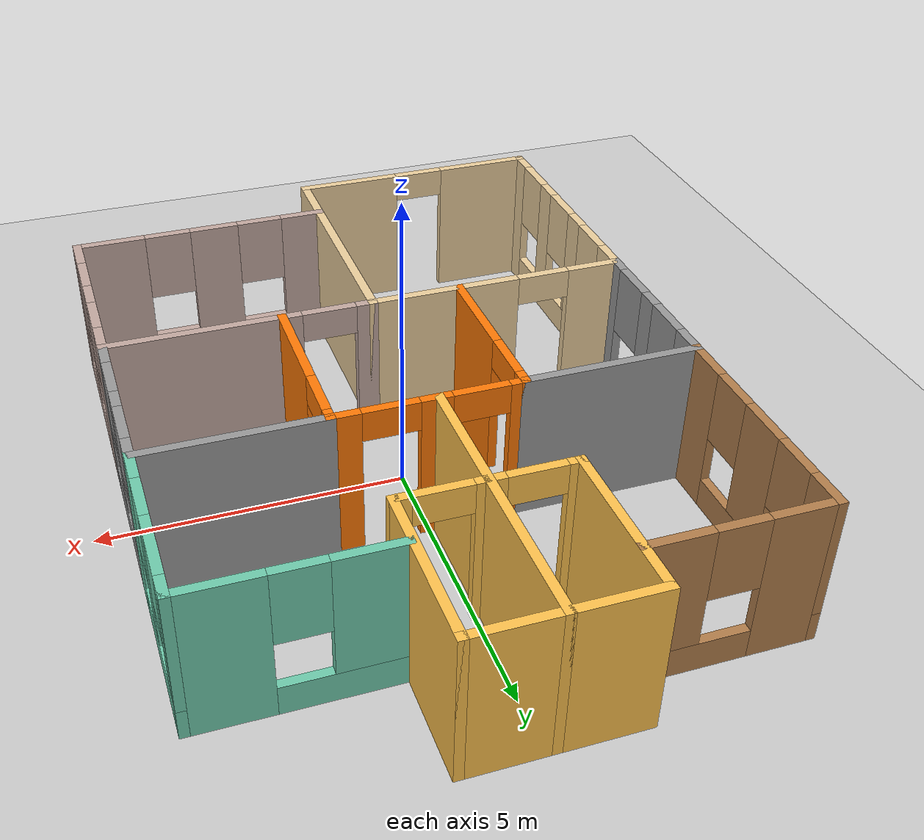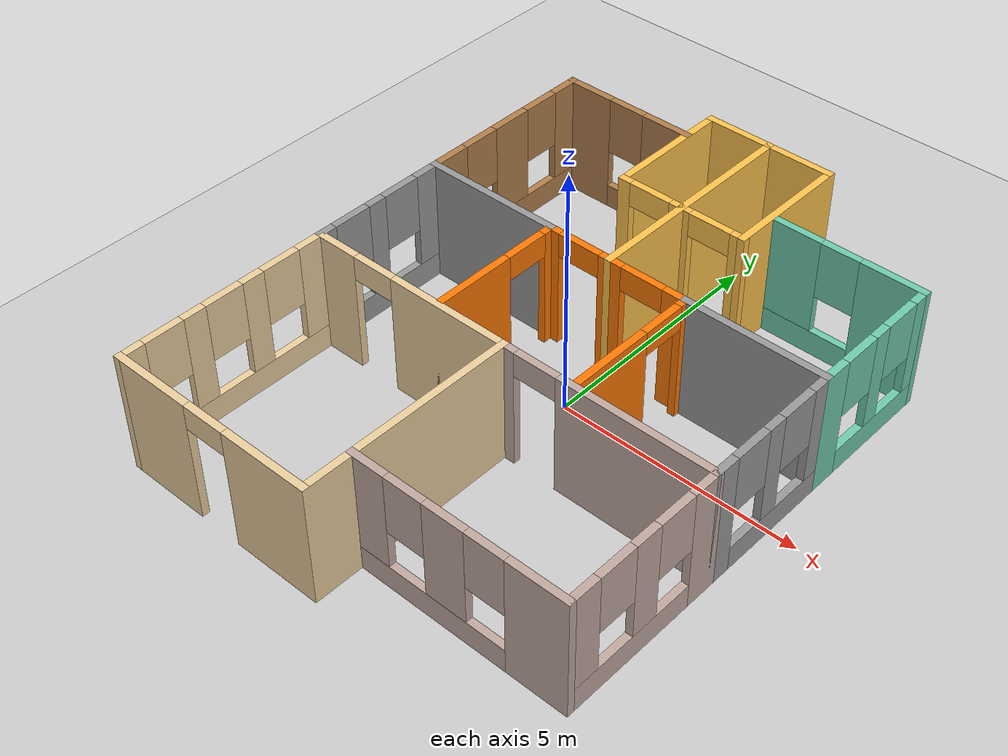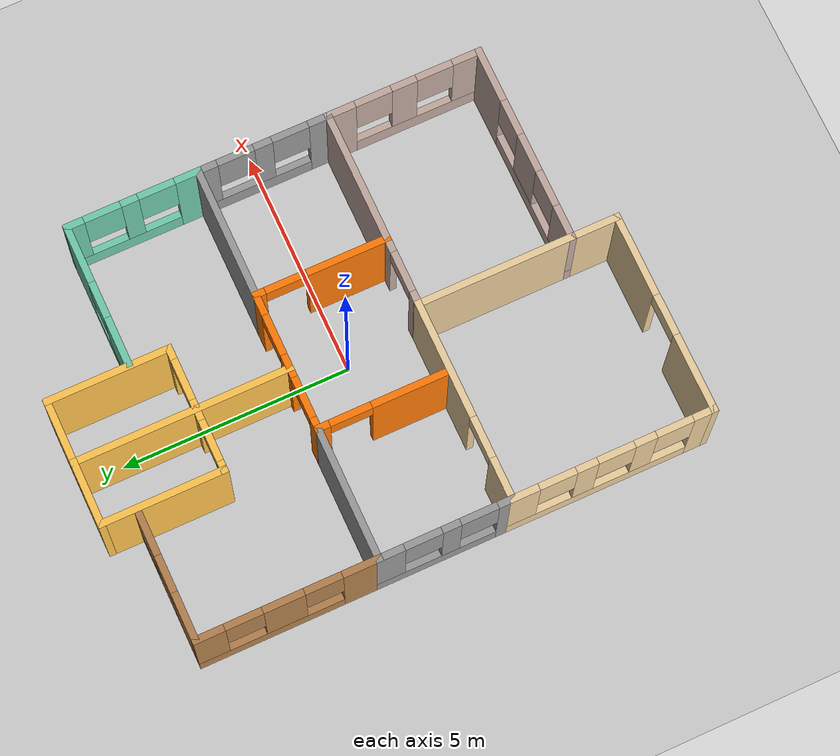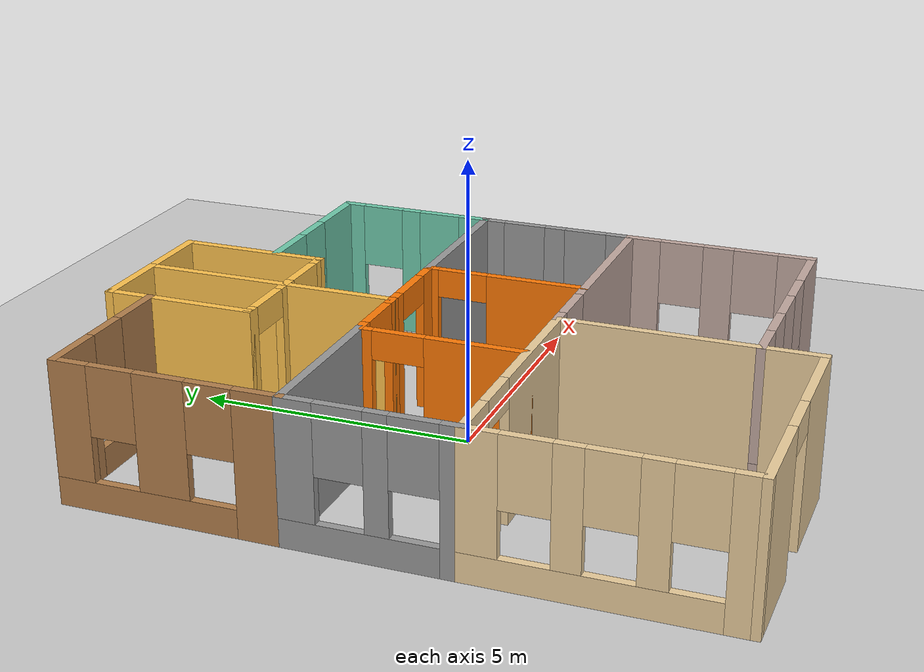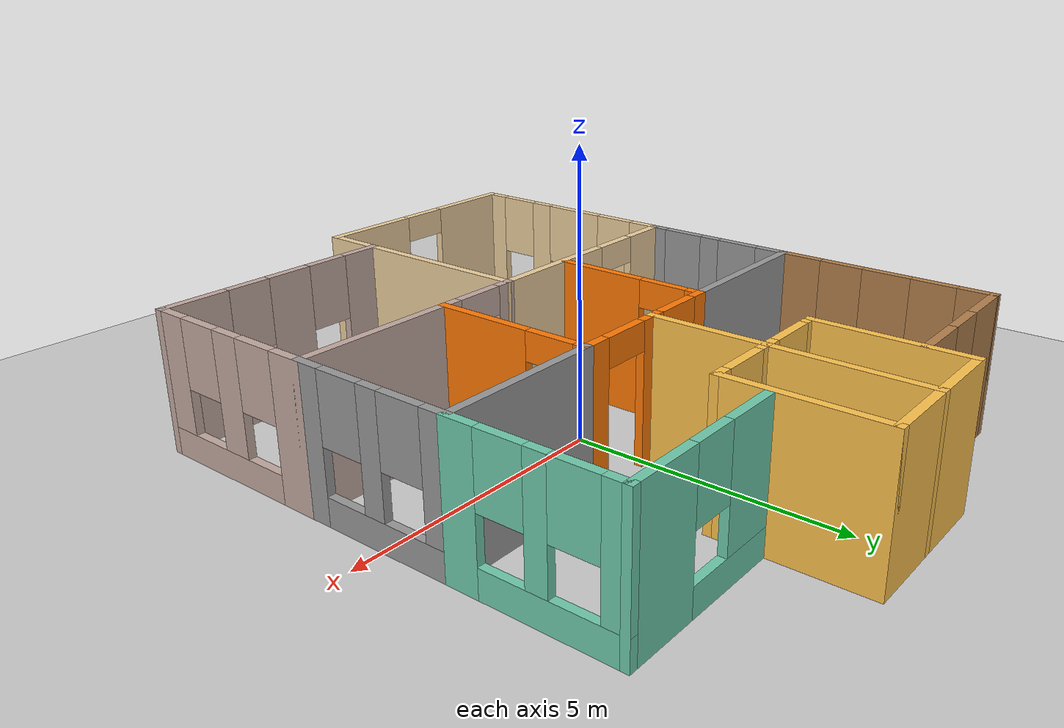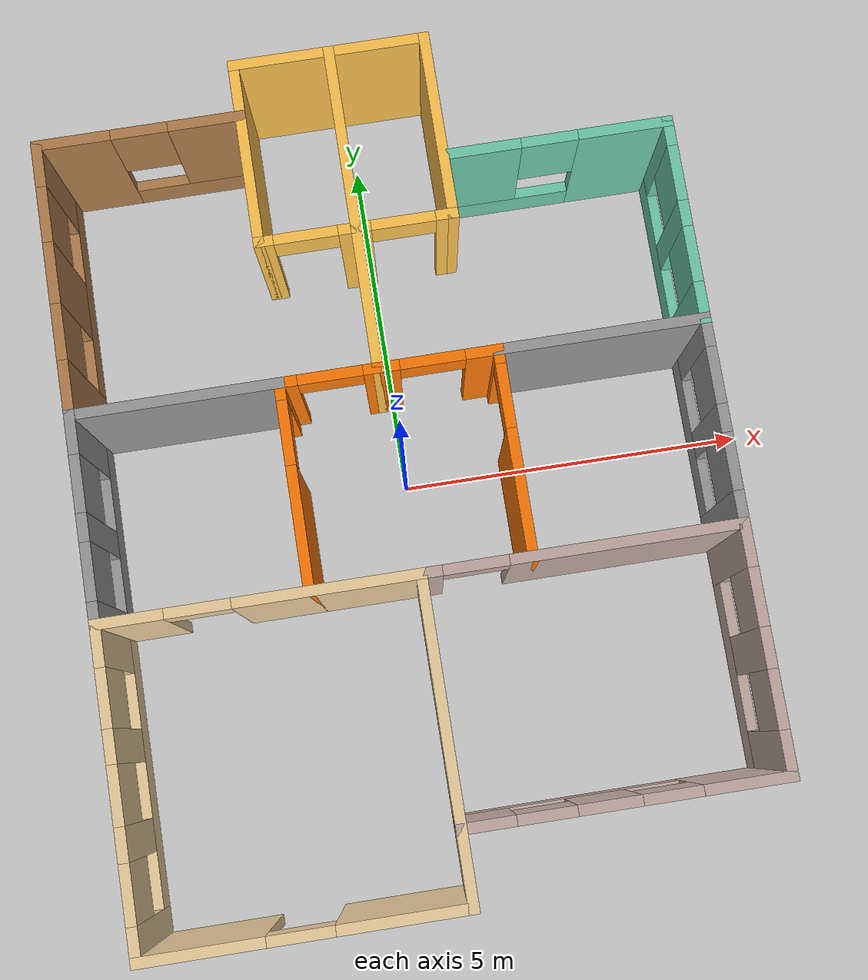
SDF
<sdf version="1.6">
 <world name="default">
  <light name="sun" type="directional">
   <pose>0 0 10 0 -0 0</pose>
   <diffuse>0.8 0.8 0.8 1</diffuse>
   <specular>0.2 0.2 0.2 1</specular>
   <attenuation>
    <range>1000</range>
    <constant>0.9</constant>
    <linear>0.01</linear>
    <quadratic>0.001</quadratic>
   </attenuation>
   <direction>-0.5 0.1 -0.9</direction>
  </light>
  <model name="ground_plane">
   <static>1</static>
   <link name="link">
    <collision name="collision">
     <geometry><plane><normal>0 0 1</normal><size>100 100</size></plane></geometry>
     <surface>
      <contact><collide_bitmask>65535</collide_bitmask></contact>
      <friction><ode><mu>100</mu><mu2>50</mu2></ode></friction>
     </surface>
    </collision>
    <visual name="visual">
     <cast_shadows>0</cast_shadows>
     <geometry><plane><normal>0 0 1</normal><size>100 100</size></plane></geometry>
     <material>
      <script><uri>file://media/materials/scripts/gazebo.material</uri><name>Gazebo/Grey</name></script>
     </material>
    </visual>
   </link>
  </model>
  <gravity>0 0 -9.8</gravity>
  <magnetic_field>6e-06 2.3e-05 -4.2e-05</magnetic_field>
  <atmosphere type="adiabatic"/>
  <physics name="default_physics" default="0" type="ode">
   <max_step_size>0.001</max_step_size>
   <real_time_factor>1</real_time_factor>
   <real_time_update_rate>1000</real_time_update_rate>
  </physics>
  <scene><ambient>0.4 0.4 0.4 1</ambient><background>0.7 0.7 0.7 1</background><shadows>1</shadows></scene>
  <audio><device>default</device></audio>
  <spherical_coordinates>
   <surface_model>EARTH_WGS84</surface_model>
   <latitude_deg>0</latitude_deg>
   <longitude_deg>0</longitude_deg>
   <elevation>0</elevation>
   <heading_deg>0</heading_deg>
  </spherical_coordinates>
  <model name="dd_home">
   <link name="Wall_0">
    <pose>-2.175 -5.9 0 0 -0 3.14159</pose>
    <visual name="Wall_0_Visual_0">
     <pose>-1.322 0 1.25 0 -0 0</pose>
     <geometry><box><size>1.856 0.15 2.5</size></box></geometry>
     <material>
      <script><uri>file://media/materials/scripts/gazebo.material</uri><name>Gazebo/Grey</name></script>
      <ambient>0.921569 0.807843 0.615686 1</ambient>
     </material>
     <meta><layer>0</layer></meta>
    </visual>
    <collision name="Wall_0_Collision_0">
     <geometry><box><size>1.856 0.15 2.5</size></box></geometry>
     <pose>-1.322 0 1.25 0 -0 0</pose>
    </collision>
    <visual name="Wall_0_Visual_1">
     <pose>1.378 0 1.25 0 -0 0</pose>
     <geometry><box><size>1.744 0.15 2.5</size></box></geometry>
     <material>
      <script><uri>file://media/materials/scripts/gazebo.material</uri><name>Gazebo/Grey</name></script>
      <ambient>0.921569 0.807843 0.615686 1</ambient>
     </material>
     <meta><layer>0</layer></meta>
    </visual>
    <collision name="Wall_0_Collision_1">
     <geometry><box><size>1.744 0.15 2.5</size></box></geometry>
     <pose>1.378 0 1.25 0 -0 0</pose>
    </collision>
    <visual name="Wall_0_Visual_2">
     <pose>0.056 0 2.25 0 -0 0</pose>
     <geometry><box><size>0.9 0.15 0.5</size></box></geometry>
     <material>
      <script><uri>file://media/materials/scripts/gazebo.material</uri><name>Gazebo/Grey</name></script>
      <ambient>0.921569 0.807843 0.615686 1</ambient>
     </material>
     <meta><layer>0</layer></meta>
    </visual>
    <collision name="Wall_0_Collision_2">
     <geometry><box><size>0.9 0.15 0.5</size></box></geometry>
     <pose>0.056 0 2.25 0 -0 0</pose>
    </collision>
   </link>
   <link name="Wall_1">
    <pose>-4.35 -3.725 0 0 -0 1.5708</pose>
    <visual name="Wall_1_Visual_0">
     <pose>-1.987 0 1.25 0 -0 0</pose>
     <geometry><box><size>0.526 0.15 2.5</size></box></geometry>
     <material>
      <script><uri>file://media/materials/scripts/gazebo.material</uri><name>Gazebo/Grey</name></script>
      <ambient>0.921569 0.807843 0.615686 1</ambient>
     </material>
     <meta><layer>0</layer></meta>
    </visual>
    <collision name="Wall_1_Collision_0">
     <geometry><box><size>0.526 0.15 2.5</size></box></geometry>
     <pose>-1.987 0 1.25 0 -0 0</pose>
    </collision>
    <visual name="Wall_1_Visual_1">
     <pose>0.263 0 0.25 0 -0 0</pose>
     <geometry><box><size>3.974 0.15 0.5</size></box></geometry>
     <material>
      <script><uri>file://media/materials/scripts/gazebo.material</uri><name>Gazebo/Grey</name></script>
      <ambient>0.921569 0.807843 0.615686 1</ambient>
     </material>
     <meta><layer>0</layer></meta>
    </visual>
    <collision name="Wall_1_Collision_1">
     <geometry><box><size>3.974 0.15 0.5</size></box></geometry>
     <pose>0.263 0 0.25 0 -0 0</pose>
    </collision>
    <visual name="Wall_1_Visual_2">
     <pose>-0.6915 0 1.5 0 -0 0</pose>
     <geometry><box><size>0.465 0.15 2</size></box></geometry>
     <material>
      <script><uri>file://media/materials/scripts/gazebo.material</uri><name>Gazebo/Grey</name></script>
      <ambient>0.921569 0.807843 0.615686 1</ambient>
     </material>
     <meta><layer>0</layer></meta>
    </visual>
    <collision name="Wall_1_Collision_2">
     <geometry><box><size>0.465 0.15 2</size></box></geometry>
     <pose>-0.6915 0 1.5 0 -0 0</pose>
    </collision>
    <visual name="Wall_1_Visual_3">
     <pose>0.5735 0 1.5 0 -0 0</pose>
     <geometry><box><size>0.465 0.15 2</size></box></geometry>
     <material>
      <script><uri>file://media/materials/scripts/gazebo.material</uri><name>Gazebo/Grey</name></script>
      <ambient>0.921569 0.807843 0.615686 1</ambient>
     </material>
     <meta><layer>0</layer></meta>
    </visual>
    <collision name="Wall_1_Collision_3">
     <geometry><box><size>0.465 0.15 2</size></box></geometry>
     <pose>0.5735 0 1.5 0 -0 0</pose>
    </collision>
    <visual name="Wall_1_Visual_4">
     <pose>1.928 0 1.5 0 -0 0</pose>
     <geometry><box><size>0.644 0.15 2</size></box></geometry>
     <material>
      <script><uri>file://media/materials/scripts/gazebo.material</uri><name>Gazebo/Grey</name></script>
      <ambient>0.921569 0.807843 0.615686 1</ambient>
     </material>
     <meta><layer>0</layer></meta>
    </visual>
    <collision name="Wall_1_Collision_4">
     <geometry><box><size>0.644 0.15 2</size></box></geometry>
     <pose>1.928 0 1.5 0 -0 0</pose>
    </collision>
    <visual name="Wall_1_Visual_5">
     <pose>-1.324 0 1.9 0 -0 0</pose>
     <geometry><box><size>0.8 0.15 1.2</size></box></geometry>
     <material>
      <script><uri>file://media/materials/scripts/gazebo.material</uri><name>Gazebo/Grey</name></script>
      <ambient>0.921569 0.807843 0.615686 1</ambient>
     </material>
     <meta><layer>0</layer></meta>
    </visual>
    <collision name="Wall_1_Collision_5">
     <geometry><box><size>0.8 0.15 1.2</size></box></geometry>
     <pose>-1.324 0 1.9 0 -0 0</pose>
    </collision>
    <visual name="Wall_1_Visual_6">
     <pose>-0.059 0 1.9 0 -0 0</pose>
     <geometry><box><size>0.8 0.15 1.2</size></box></geometry>
     <material>
      <script><uri>file://media/materials/scripts/gazebo.material</uri><name>Gazebo/Grey</name></script>
      <ambient>0.921569 0.807843 0.615686 1</ambient>
     </material>
     <meta><layer>0</layer></meta>
    </visual>
    <collision name="Wall_1_Collision_6">
     <geometry><box><size>0.8 0.15 1.2</size></box></geometry>
     <pose>-0.059 0 1.9 0 -0 0</pose>
    </collision>
    <visual name="Wall_1_Visual_7">
     <pose>1.206 0 1.9 0 -0 0</pose>
     <geometry><box><size>0.8 0.15 1.2</size></box></geometry>
     <material>
      <script><uri>file://media/materials/scripts/gazebo.material</uri><name>Gazebo/Grey</name></script>
      <ambient>0.921569 0.807843 0.615686 1</ambient>
     </material>
     <meta><layer>0</layer></meta>
    </visual>
    <collision name="Wall_1_Collision_7">
     <geometry><box><size>0.8 0.15 1.2</size></box></geometry>
     <pose>1.206 0 1.9 0 -0 0</pose>
    </collision>
   </link>
   <link name="Wall_10">
    <collision name="Wall_10_Collision">
     <geometry><box><size>3 0.15 2.5</size></box></geometry>
     <pose>0 0 1.25 0 -0 0</pose>
    </collision>
    <visual name="Wall_10_Visual">
     <pose>0 0 1.25 0 -0 0</pose>
     <geometry><box><size>3 0.15 2.5</size></box></geometry>
     <material>
      <script><uri>file://media/materials/scripts/gazebo.material</uri><name>Gazebo/Grey</name></script>
      <ambient>1 1 1 1</ambient>
     </material>
     <meta><layer>0</layer></meta>
    </visual>
    <pose>2.925 1.3 0 0 -0 3.14159</pose>
   </link>
   <link name="Wall_11">
    <pose>1.5 -0.125 0 0 -0 -1.5708</pose>
    <visual name="Wall_11_Visual_0">
     <pose>-1.365 0 1.25 0 -0 0</pose>
     <geometry><box><size>0.27 0.15 2.5</size></box></geometry>
     <material>
      <script><uri>file://media/materials/scripts/gazebo.material</uri><name>Gazebo/Grey</name></script>
      <ambient>0.996078 0.47451 0.0196078 1</ambient>
     </material>
     <meta><layer>0</layer></meta>
    </visual>
    <collision name="Wall_11_Collision_0">
     <geometry><box><size>0.27 0.15 2.5</size></box></geometry>
     <pose>-1.365 0 1.25 0 -0 0</pose>
    </collision>
    <visual name="Wall_11_Visual_1">
     <pose>0.585 0 1.25 0 -0 0</pose>
     <geometry><box><size>1.83 0.15 2.5</size></box></geometry>
     <material>
      <script><uri>file://media/materials/scripts/gazebo.material</uri><name>Gazebo/Grey</name></script>
      <ambient>0.996078 0.47451 0.0196078 1</ambient>
     </material>
     <meta><layer>0</layer></meta>
    </visual>
    <collision name="Wall_11_Collision_1">
     <geometry><box><size>1.83 0.15 2.5</size></box></geometry>
     <pose>0.585 0 1.25 0 -0 0</pose>
    </collision>
    <visual name="Wall_11_Visual_2">
     <pose>-0.78 0 2.25 0 -0 0</pose>
     <geometry><box><size>0.9 0.15 0.5</size></box></geometry>
     <material>
      <script><uri>file://media/materials/scripts/gazebo.material</uri><name>Gazebo/Grey</name></script>
      <ambient>0.996078 0.47451 0.0196078 1</ambient>
     </material>
     <meta><layer>0</layer></meta>
    </visual>
    <collision name="Wall_11_Collision_2">
     <geometry><box><size>0.9 0.15 0.5</size></box></geometry>
     <pose>-0.78 0 2.25 0 -0 0</pose>
    </collision>
   </link>
   <link name="Wall_13">
    <pose>-4.35 -0.125 0 0 -0 1.5708</pose>
    <visual name="Wall_13_Visual_0">
     <pose>-1.3075 0 1.25 0 -0 0</pose>
     <geometry><box><size>0.385 0.15 2.5</size></box></geometry>
     <material>
      <script><uri>file://media/materials/scripts/gazebo.material</uri><name>Gazebo/Grey</name></script>
      <ambient>1 1 1 1</ambient>
     </material>
     <meta><layer>0</layer></meta>
    </visual>
    <collision name="Wall_13_Collision_0">
     <geometry><box><size>0.385 0.15 2.5</size></box></geometry>
     <pose>-1.3075 0 1.25 0 -0 0</pose>
    </collision>
    <visual name="Wall_13_Visual_1">
     <pose>0.1925 0 0.25 0 -0 0</pose>
     <geometry><box><size>2.615 0.15 0.5</size></box></geometry>
     <material>
      <script><uri>file://media/materials/scripts/gazebo.material</uri><name>Gazebo/Grey</name></script>
      <ambient>1 1 1 1</ambient>
     </material>
     <meta><layer>0</layer></meta>
    </visual>
    <collision name="Wall_13_Collision_1">
     <geometry><box><size>2.615 0.15 0.5</size></box></geometry>
     <pose>0.1925 0 0.25 0 -0 0</pose>
    </collision>
    <visual name="Wall_13_Visual_2">
     <pose>-0.117 0 1.5 0 -0 0</pose>
     <geometry><box><size>0.396 0.15 2</size></box></geometry>
     <material>
      <script><uri>file://media/materials/scripts/gazebo.material</uri><name>Gazebo/Grey</name></script>
      <ambient>1 1 1 1</ambient>
     </material>
     <meta><layer>0</layer></meta>
    </visual>
    <collision name="Wall_13_Collision_2">
     <geometry><box><size>0.396 0.15 2</size></box></geometry>
     <pose>-0.117 0 1.5 0 -0 0</pose>
    </collision>
    <visual name="Wall_13_Visual_3">
     <pose>1.1905 0 1.5 0 -0 0</pose>
     <geometry><box><size>0.619 0.15 2</size></box></geometry>
     <material>
      <script><uri>file://media/materials/scripts/gazebo.material</uri><name>Gazebo/Grey</name></script>
      <ambient>1 1 1 1</ambient>
     </material>
     <meta><layer>0</layer></meta>
    </visual>
    <collision name="Wall_13_Collision_3">
     <geometry><box><size>0.619 0.15 2</size></box></geometry>
     <pose>1.1905 0 1.5 0 -0 0</pose>
    </collision>
    <visual name="Wall_13_Visual_4">
     <pose>-0.715 0 1.9 0 -0 0</pose>
     <geometry><box><size>0.8 0.15 1.2</size></box></geometry>
     <material>
      <script><uri>file://media/materials/scripts/gazebo.material</uri><name>Gazebo/Grey</name></script>
      <ambient>1 1 1 1</ambient>
     </material>
     <meta><layer>0</layer></meta>
    </visual>
    <collision name="Wall_13_Collision_4">
     <geometry><box><size>0.8 0.15 1.2</size></box></geometry>
     <pose>-0.715 0 1.9 0 -0 0</pose>
    </collision>
    <visual name="Wall_13_Visual_5">
     <pose>0.481 0 1.9 0 -0 0</pose>
     <geometry><box><size>0.8 0.15 1.2</size></box></geometry>
     <material>
      <script><uri>file://media/materials/scripts/gazebo.material</uri><name>Gazebo/Grey</name></script>
      <ambient>1 1 1 1</ambient>
     </material>
     <meta><layer>0</layer></meta>
    </visual>
    <collision name="Wall_13_Collision_5">
     <geometry><box><size>0.8 0.15 1.2</size></box></geometry>
     <pose>0.481 0 1.9 0 -0 0</pose>
    </collision>
   </link>
   <link name="Wall_14">
    <collision name="Wall_14_Collision">
     <geometry><box><size>3 0.15 2.5</size></box></geometry>
     <pose>0 0 1.25 0 -0 0</pose>
    </collision>
    <visual name="Wall_14_Visual">
     <pose>0 0 1.25 0 -0 0</pose>
     <geometry><box><size>3 0.15 2.5</size></box></geometry>
     <material>
      <script><uri>file://media/materials/scripts/gazebo.material</uri><name>Gazebo/Grey</name></script>
      <ambient>1 1 1 1</ambient>
     </material>
     <meta><layer>0</layer></meta>
    </visual>
    <pose>-2.925 1.3 0 0 -0 0</pose>
   </link>
   <link name="Wall_15">
    <pose>-1.5 -0.125 0 0 -0 -1.5708</pose>
    <visual name="Wall_15_Visual_0">
     <pose>-1.342 0 1.25 0 -0 0</pose>
     <geometry><box><size>0.316 0.15 2.5</size></box></geometry>
     <material>
      <script><uri>file://media/materials/scripts/gazebo.material</uri><name>Gazebo/Grey</name></script>
      <ambient>0.996078 0.47451 0.0196078 1</ambient>
     </material>
     <meta><layer>0</layer></meta>
    </visual>
    <collision name="Wall_15_Collision_0">
     <geometry><box><size>0.316 0.15 2.5</size></box></geometry>
     <pose>-1.342 0 1.25 0 -0 0</pose>
    </collision>
    <visual name="Wall_15_Visual_1">
     <pose>0.608 0 1.25 0 -0 0</pose>
     <geometry><box><size>1.784 0.15 2.5</size></box></geometry>
     <material>
      <script><uri>file://media/materials/scripts/gazebo.material</uri><name>Gazebo/Grey</name></script>
      <ambient>0.996078 0.47451 0.0196078 1</ambient>
     </material>
     <meta><layer>0</layer></meta>
    </visual>
    <collision name="Wall_15_Collision_1">
     <geometry><box><size>1.784 0.15 2.5</size></box></geometry>
     <pose>0.608 0 1.25 0 -0 0</pose>
    </collision>
    <visual name="Wall_15_Visual_2">
     <pose>-0.734 0 2.25 0 -0 0</pose>
     <geometry><box><size>0.9 0.15 0.5</size></box></geometry>
     <material>
      <script><uri>file://media/materials/scripts/gazebo.material</uri><name>Gazebo/Grey</name></script>
      <ambient>0.996078 0.47451 0.0196078 1</ambient>
     </material>
     <meta><layer>0</layer></meta>
    </visual>
    <collision name="Wall_15_Collision_2">
     <geometry><box><size>0.9 0.15 0.5</size></box></geometry>
     <pose>-0.734 0 2.25 0 -0 0</pose>
    </collision>
   </link>
   <link name="Wall_17">
    <pose>-0.825 1.3 0 0 -0 0</pose>
    <visual name="Wall_17_Visual_0">
     <pose>-0.59 0 1.25 0 -0 0</pose>
     <geometry><box><size>0.32 0.15 2.5</size></box></geometry>
     <material>
      <script><uri>file://media/materials/scripts/gazebo.material</uri><name>Gazebo/Grey</name></script>
      <ambient>0.996078 0.47451 0.0196078 1</ambient>
     </material>
     <meta><layer>0</layer></meta>
    </visual>
    <collision name="Wall_17_Collision_0">
     <geometry><box><size>0.32 0.15 2.5</size></box></geometry>
     <pose>-0.59 0 1.25 0 -0 0</pose>
    </collision>
    <visual name="Wall_17_Visual_1">
     <pose>0.61 0 1.25 0 -0 0</pose>
     <geometry><box><size>0.28 0.15 2.5</size></box></geometry>
     <material>
      <script><uri>file://media/materials/scripts/gazebo.material</uri><name>Gazebo/Grey</name></script>
      <ambient>0.996078 0.47451 0.0196078 1</ambient>
     </material>
     <meta><layer>0</layer></meta>
    </visual>
    <collision name="Wall_17_Collision_1">
     <geometry><box><size>0.28 0.15 2.5</size></box></geometry>
     <pose>0.61 0 1.25 0 -0 0</pose>
    </collision>
    <visual name="Wall_17_Visual_2">
     <pose>0.02 0 2.25 0 -0 0</pose>
     <geometry><box><size>0.9 0.15 0.5</size></box></geometry>
     <material>
      <script><uri>file://media/materials/scripts/gazebo.material</uri><name>Gazebo/Grey</name></script>
      <ambient>0.996078 0.47451 0.0196078 1</ambient>
     </material>
     <meta><layer>0</layer></meta>
    </visual>
    <collision name="Wall_17_Collision_2">
     <geometry><box><size>0.9 0.15 0.5</size></box></geometry>
     <pose>0.02 0 2.25 0 -0 0</pose>
    </collision>
   </link>
   <link name="Wall_18">
    <collision name="Wall_18_Collision">
     <geometry><box><size>4.75 0.15 2.5</size></box></geometry>
     <pose>0 0 1.25 0 -0 0</pose>
    </collision>
    <visual name="Wall_18_Visual">
     <pose>0 0 1.25 0 -0 0</pose>
     <geometry><box><size>4.75 0.15 2.5</size></box></geometry>
     <material>
      <script><uri>file://media/materials/scripts/gazebo.material</uri><name>Gazebo/Grey</name></script>
      <ambient>1 0.764706 0.305882 1</ambient>
     </material>
     <meta><layer>0</layer></meta>
    </visual>
    <pose>-0.15 3.6 0 0 -0 1.5708</pose>
   </link>
   <link name="Wall_19">
    <collision name="Wall_19_Collision">
     <geometry><box><size>1.5 0.15 2.5</size></box></geometry>
     <pose>0 0 1.25 0 -0 0</pose>
    </collision>
    <visual name="Wall_19_Visual">
     <pose>0 0 1.25 0 -0 0</pose>
     <geometry><box><size>1.5 0.15 2.5</size></box></geometry>
     <material>
      <script><uri>file://media/materials/scripts/gazebo.material</uri><name>Gazebo/Grey</name></script>
      <ambient>1 0.764706 0.305882 1</ambient>
     </material>
     <meta><layer>0</layer></meta>
    </visual>
    <pose>-0.825 5.9 0 0 -0 3.14159</pose>
   </link>
   <link name="Wall_2">
    <pose>-2.175 -1.55 0 0 -0 0</pose>
    <visual name="Wall_2_Visual_0">
     <pose>-1.7575 0 1.25 0 -0 0</pose>
     <geometry><box><size>0.985 0.15 2.5</size></box></geometry>
     <material>
      <script><uri>file://media/materials/scripts/gazebo.material</uri><name>Gazebo/Grey</name></script>
      <ambient>0.921569 0.807843 0.615686 1</ambient>
     </material>
     <meta><layer>0</layer></meta>
    </visual>
    <collision name="Wall_2_Collision_0">
     <geometry><box><size>0.985 0.15 2.5</size></box></geometry>
     <pose>-1.7575 0 1.25 0 -0 0</pose>
    </collision>
    <visual name="Wall_2_Visual_1">
     <pose>0.9425 0 1.25 0 -0 0</pose>
     <geometry><box><size>2.615 0.15 2.5</size></box></geometry>
     <material>
      <script><uri>file://media/materials/scripts/gazebo.material</uri><name>Gazebo/Grey</name></script>
      <ambient>0.921569 0.807843 0.615686 1</ambient>
     </material>
     <meta><layer>0</layer></meta>
    </visual>
    <collision name="Wall_2_Collision_1">
     <geometry><box><size>2.615 0.15 2.5</size></box></geometry>
     <pose>0.9425 0 1.25 0 -0 0</pose>
    </collision>
    <visual name="Wall_2_Visual_2">
     <pose>-0.815 0 2.25 0 -0 0</pose>
     <geometry><box><size>0.9 0.15 0.5</size></box></geometry>
     <material>
      <script><uri>file://media/materials/scripts/gazebo.material</uri><name>Gazebo/Grey</name></script>
      <ambient>0.921569 0.807843 0.615686 1</ambient>
     </material>
     <meta><layer>0</layer></meta>
    </visual>
    <collision name="Wall_2_Collision_2">
     <geometry><box><size>0.9 0.15 0.5</size></box></geometry>
     <pose>-0.815 0 2.25 0 -0 0</pose>
    </collision>
   </link>
   <link name="Wall_20">
    <collision name="Wall_20_Collision">
     <geometry><box><size>2.75 0.15 2.5</size></box></geometry>
     <pose>0 0 1.25 0 -0 0</pose>
    </collision>
    <visual name="Wall_20_Visual">
     <pose>0 0 1.25 0 -0 0</pose>
     <geometry><box><size>2.75 0.15 2.5</size></box></geometry>
     <material>
      <script><uri>file://media/materials/scripts/gazebo.material</uri><name>Gazebo/Grey</name></script>
      <ambient>1 0.764706 0.305882 1</ambient>
     </material>
     <meta><layer>0</layer></meta>
    </visual>
    <pose>-1.5 4.6 0 0 -0 -1.5708</pose>
   </link>
   <link name="Wall_21">
    <pose>-0.825 3.3 0 0 -0 0</pose>
    <visual name="Wall_21_Visual_0">
     <pose>-0.613 0 1.25 0 -0 0</pose>
     <geometry><box><size>0.274 0.15 2.5</size></box></geometry>
     <material>
      <script><uri>file://media/materials/scripts/gazebo.material</uri><name>Gazebo/Grey</name></script>
      <ambient>1 0.764706 0.305882 1</ambient>
     </material>
     <meta><layer>0</layer></meta>
    </visual>
    <collision name="Wall_21_Collision_0">
     <geometry><box><size>0.274 0.15 2.5</size></box></geometry>
     <pose>-0.613 0 1.25 0 -0 0</pose>
    </collision>
    <visual name="Wall_21_Visual_1">
     <pose>0.587 0 1.25 0 -0 0</pose>
     <geometry><box><size>0.326 0.15 2.5</size></box></geometry>
     <material>
      <script><uri>file://media/materials/scripts/gazebo.material</uri><name>Gazebo/Grey</name></script>
      <ambient>1 0.764706 0.305882 1</ambient>
     </material>
     <meta><layer>0</layer></meta>
    </visual>
    <collision name="Wall_21_Collision_1">
     <geometry><box><size>0.326 0.15 2.5</size></box></geometry>
     <pose>0.587 0 1.25 0 -0 0</pose>
    </collision>
    <visual name="Wall_21_Visual_2">
     <pose>-0.026 0 2.25 0 -0 0</pose>
     <geometry><box><size>0.9 0.15 0.5</size></box></geometry>
     <material>
      <script><uri>file://media/materials/scripts/gazebo.material</uri><name>Gazebo/Grey</name></script>
      <ambient>1 0.764706 0.305882 1</ambient>
     </material>
     <meta><layer>0</layer></meta>
    </visual>
    <collision name="Wall_21_Collision_2">
     <geometry><box><size>0.9 0.15 0.5</size></box></geometry>
     <pose>-0.026 0 2.25 0 -0 0</pose>
    </collision>
   </link>
   <link name="Wall_23">
    <pose>-4.35 3.225 0 0 -0 1.5708</pose>
    <visual name="Wall_23_Visual_0">
     <pose>-1.5765 0 1.25 0 -0 0</pose>
     <geometry><box><size>0.847 0.15 2.5</size></box></geometry>
     <material>
      <script><uri>file://media/materials/scripts/gazebo.material</uri><name>Gazebo/Wood</name></script>
      <ambient>1 1 1 1</ambient>
     </material>
     <meta><layer>0</layer></meta>
    </visual>
    <collision name="Wall_23_Collision_0">
     <geometry><box><size>0.847 0.15 2.5</size></box></geometry>
     <pose>-1.5765 0 1.25 0 -0 0</pose>
    </collision>
    <visual name="Wall_23_Visual_1">
     <pose>0.4235 0 0.25 0 -0 0</pose>
     <geometry><box><size>3.153 0.15 0.5</size></box></geometry>
     <material>
      <script><uri>file://media/materials/scripts/gazebo.material</uri><name>Gazebo/Wood</name></script>
      <ambient>1 1 1 1</ambient>
     </material>
     <meta><layer>0</layer></meta>
    </visual>
    <collision name="Wall_23_Collision_1">
     <geometry><box><size>3.153 0.15 0.5</size></box></geometry>
     <pose>0.4235 0 0.25 0 -0 0</pose>
    </collision>
    <visual name="Wall_23_Visual_2">
     <pose>0.0865 0 1.5 0 -0 0</pose>
     <geometry><box><size>0.879 0.15 2</size></box></geometry>
     <material>
      <script><uri>file://media/materials/scripts/gazebo.material</uri><name>Gazebo/Wood</name></script>
      <ambient>1 1 1 1</ambient>
     </material>
     <meta><layer>0</layer></meta>
    </visual>
    <collision name="Wall_23_Collision_2">
     <geometry><box><size>0.879 0.15 2</size></box></geometry>
     <pose>0.0865 0 1.5 0 -0 0</pose>
    </collision>
    <visual name="Wall_23_Visual_3">
     <pose>1.663 0 1.5 0 -0 0</pose>
     <geometry><box><size>0.674 0.15 2</size></box></geometry>
     <material>
      <script><uri>file://media/materials/scripts/gazebo.material</uri><name>Gazebo/Wood</name></script>
      <ambient>1 1 1 1</ambient>
     </material>
     <meta><layer>0</layer></meta>
    </visual>
    <collision name="Wall_23_Collision_3">
     <geometry><box><size>0.674 0.15 2</size></box></geometry>
     <pose>1.663 0 1.5 0 -0 0</pose>
    </collision>
    <visual name="Wall_23_Visual_4">
     <pose>-0.753 0 1.9 0 -0 0</pose>
     <geometry><box><size>0.8 0.15 1.2</size></box></geometry>
     <material>
      <script><uri>file://media/materials/scripts/gazebo.material</uri><name>Gazebo/Wood</name></script>
      <ambient>1 1 1 1</ambient>
     </material>
     <meta><layer>0</layer></meta>
    </visual>
    <collision name="Wall_23_Collision_4">
     <geometry><box><size>0.8 0.15 1.2</size></box></geometry>
     <pose>-0.753 0 1.9 0 -0 0</pose>
    </collision>
    <visual name="Wall_23_Visual_5">
     <pose>0.926 0 1.9 0 -0 0</pose>
     <geometry><box><size>0.8 0.15 1.2</size></box></geometry>
     <material>
      <script><uri>file://media/materials/scripts/gazebo.material</uri><name>Gazebo/Wood</name></script>
      <ambient>1 1 1 1</ambient>
     </material>
     <meta><layer>0</layer></meta>
    </visual>
    <collision name="Wall_23_Collision_5">
     <geometry><box><size>0.8 0.15 1.2</size></box></geometry>
     <pose>0.926 0 1.9 0 -0 0</pose>
    </collision>
   </link>
   <link name="Wall_24">
    <pose>-2.925 5.15 0 0 -0 0</pose>
    <visual name="Wall_24_Visual_0">
     <pose>-0.948 0 1.25 0 -0 0</pose>
     <geometry><box><size>1.104 0.15 2.5</size></box></geometry>
     <material>
      <script><uri>file://media/materials/scripts/gazebo.material</uri><name>Gazebo/Wood</name></script>
      <ambient>1 1 1 1</ambient>
     </material>
     <meta><layer>0</layer></meta>
    </visual>
    <collision name="Wall_24_Collision_0">
     <geometry><box><size>1.104 0.15 2.5</size></box></geometry>
     <pose>-0.948 0 1.25 0 -0 0</pose>
    </collision>
    <visual name="Wall_24_Visual_1">
     <pose>0.552 0 0.25 0 -0 0</pose>
     <geometry><box><size>1.896 0.15 0.5</size></box></geometry>
     <material>
      <script><uri>file://media/materials/scripts/gazebo.material</uri><name>Gazebo/Wood</name></script>
      <ambient>1 1 1 1</ambient>
     </material>
     <meta><layer>0</layer></meta>
    </visual>
    <collision name="Wall_24_Collision_1">
     <geometry><box><size>1.896 0.15 0.5</size></box></geometry>
     <pose>0.552 0 0.25 0 -0 0</pose>
    </collision>
    <visual name="Wall_24_Visual_2">
     <pose>0.952 0 1.5 0 -0 0</pose>
     <geometry><box><size>1.096 0.15 2</size></box></geometry>
     <material>
      <script><uri>file://media/materials/scripts/gazebo.material</uri><name>Gazebo/Wood</name></script>
      <ambient>1 1 1 1</ambient>
     </material>
     <meta><layer>0</layer></meta>
    </visual>
    <collision name="Wall_24_Collision_2">
     <geometry><box><size>1.096 0.15 2</size></box></geometry>
     <pose>0.952 0 1.5 0 -0 0</pose>
    </collision>
    <visual name="Wall_24_Visual_3">
     <pose>0.004 0 1.9 0 -0 0</pose>
     <geometry><box><size>0.8 0.15 1.2</size></box></geometry>
     <material>
      <script><uri>file://media/materials/scripts/gazebo.material</uri><name>Gazebo/Wood</name></script>
      <ambient>1 1 1 1</ambient>
     </material>
     <meta><layer>0</layer></meta>
    </visual>
    <collision name="Wall_24_Collision_3">
     <geometry><box><size>0.8 0.15 1.2</size></box></geometry>
     <pose>0.004 0 1.9 0 -0 0</pose>
    </collision>
   </link>
   <link name="Wall_26">
    <pose>0.675 1.3 0 0 -0 3.14159</pose>
    <visual name="Wall_26_Visual_0">
     <pose>-0.6365 0 1.25 0 -0 0</pose>
     <geometry><box><size>0.527 0.15 2.5</size></box></geometry>
     <material>
      <script><uri>file://media/materials/scripts/gazebo.material</uri><name>Gazebo/Grey</name></script>
      <ambient>0.996078 0.47451 0.0196078 1</ambient>
     </material>
     <meta><layer>0</layer></meta>
    </visual>
    <collision name="Wall_26_Collision_0">
     <geometry><box><size>0.527 0.15 2.5</size></box></geometry>
     <pose>-0.6365 0 1.25 0 -0 0</pose>
    </collision>
    <visual name="Wall_26_Visual_1">
     <pose>0.7135 0 1.25 0 -0 0</pose>
     <geometry><box><size>0.373 0.15 2.5</size></box></geometry>
     <material>
      <script><uri>file://media/materials/scripts/gazebo.material</uri><name>Gazebo/Grey</name></script>
      <ambient>0.996078 0.47451 0.0196078 1</ambient>
     </material>
     <meta><layer>0</layer></meta>
    </visual>
    <collision name="Wall_26_Collision_1">
     <geometry><box><size>0.373 0.15 2.5</size></box></geometry>
     <pose>0.7135 0 1.25 0 -0 0</pose>
    </collision>
    <visual name="Wall_26_Visual_2">
     <pose>0.077 0 2.25 0 -0 0</pose>
     <geometry><box><size>0.9 0.15 0.5</size></box></geometry>
     <material>
      <script><uri>file://media/materials/scripts/gazebo.material</uri><name>Gazebo/Grey</name></script>
      <ambient>0.996078 0.47451 0.0196078 1</ambient>
     </material>
     <meta><layer>0</layer></meta>
    </visual>
    <collision name="Wall_26_Collision_2">
     <geometry><box><size>0.9 0.15 0.5</size></box></geometry>
     <pose>0.077 0 2.25 0 -0 0</pose>
    </collision>
   </link>
   <link name="Wall_28">
    <collision name="Wall_28_Collision">
     <geometry><box><size>1.5 0.15 2.5</size></box></geometry>
     <pose>0 0 1.25 0 -0 0</pose>
    </collision>
    <visual name="Wall_28_Visual">
     <pose>0 0 1.25 0 -0 0</pose>
     <geometry><box><size>1.5 0.15 2.5</size></box></geometry>
     <material>
      <script><uri>file://media/materials/scripts/gazebo.material</uri><name>Gazebo/Grey</name></script>
      <ambient>1 0.764706 0.305882 1</ambient>
     </material>
     <meta><layer>0</layer></meta>
    </visual>
    <pose>0.525 5.9 0 0 -0 0</pose>
   </link>
   <link name="Wall_29">
    <collision name="Wall_29_Collision">
     <geometry><box><size>2.75 0.15 2.5</size></box></geometry>
     <pose>0 0 1.25 0 -0 0</pose>
    </collision>
    <visual name="Wall_29_Visual">
     <pose>0 0 1.25 0 -0 0</pose>
     <geometry><box><size>2.75 0.15 2.5</size></box></geometry>
     <material>
      <script><uri>file://media/materials/scripts/gazebo.material</uri><name>Gazebo/Grey</name></script>
      <ambient>1 0.764706 0.305882 1</ambient>
     </material>
     <meta><layer>0</layer></meta>
    </visual>
    <pose>1.2 4.6 0 0 -0 -1.5708</pose>
   </link>
   <link name="Wall_30">
    <pose>0.525 3.3 0 0 -0 -3.14159</pose>
    <visual name="Wall_30_Visual_0">
     <pose>-0.5905 0 1.25 0 -0 0</pose>
     <geometry><box><size>0.319 0.15 2.5</size></box></geometry>
     <material>
      <script><uri>file://media/materials/scripts/gazebo.material</uri><name>Gazebo/Grey</name></script>
      <ambient>1 0.764706 0.305882 1</ambient>
     </material>
     <meta><layer>0</layer></meta>
    </visual>
    <collision name="Wall_30_Collision_0">
     <geometry><box><size>0.319 0.15 2.5</size></box></geometry>
     <pose>-0.5905 0 1.25 0 -0 0</pose>
    </collision>
    <visual name="Wall_30_Visual_1">
     <pose>0.6095 0 1.25 0 -0 0</pose>
     <geometry><box><size>0.281 0.15 2.5</size></box></geometry>
     <material>
      <script><uri>file://media/materials/scripts/gazebo.material</uri><name>Gazebo/Grey</name></script>
      <ambient>1 0.764706 0.305882 1</ambient>
     </material>
     <meta><layer>0</layer></meta>
    </visual>
    <collision name="Wall_30_Collision_1">
     <geometry><box><size>0.281 0.15 2.5</size></box></geometry>
     <pose>0.6095 0 1.25 0 -0 0</pose>
    </collision>
    <visual name="Wall_30_Visual_2">
     <pose>0.019 0 2.25 0 -0 0</pose>
     <geometry><box><size>0.9 0.15 0.5</size></box></geometry>
     <material>
      <script><uri>file://media/materials/scripts/gazebo.material</uri><name>Gazebo/Grey</name></script>
      <ambient>1 0.764706 0.305882 1</ambient>
     </material>
     <meta><layer>0</layer></meta>
    </visual>
    <collision name="Wall_30_Collision_2">
     <geometry><box><size>0.9 0.15 0.5</size></box></geometry>
     <pose>0.019 0 2.25 0 -0 0</pose>
    </collision>
   </link>
   <link name="Wall_32">
    <pose>4.35 2.725 0 0 -0 1.5708</pose>
    <visual name="Wall_32_Visual_0">
     <pose>-1.203 0 1.25 0 -0 0</pose>
     <geometry><box><size>0.594 0.15 2.5</size></box></geometry>
     <material>
      <script><uri>file://media/materials/scripts/gazebo.material</uri><name>Gazebo/Grey</name></script>
      <ambient>0.435294 0.796078 0.67451 1</ambient>
     </material>
     <meta><layer>0</layer></meta>
    </visual>
    <collision name="Wall_32_Collision_0">
     <geometry><box><size>0.594 0.15 2.5</size></box></geometry>
     <pose>-1.203 0 1.25 0 -0 0</pose>
    </collision>
    <visual name="Wall_32_Visual_1">
     <pose>0.297 0 0.25 0 -0 0</pose>
     <geometry><box><size>2.406 0.15 0.5</size></box></geometry>
     <material>
      <script><uri>file://media/materials/scripts/gazebo.material</uri><name>Gazebo/Grey</name></script>
      <ambient>0.435294 0.796078 0.67451 1</ambient>
     </material>
     <meta><layer>0</layer></meta>
    </visual>
    <collision name="Wall_32_Collision_1">
     <geometry><box><size>2.406 0.15 0.5</size></box></geometry>
     <pose>0.297 0 0.25 0 -0 0</pose>
    </collision>
    <visual name="Wall_32_Visual_2">
     <pose>0.0805 0 1.5 0 -0 0</pose>
     <geometry><box><size>0.373 0.15 2</size></box></geometry>
     <material>
      <script><uri>file://media/materials/scripts/gazebo.material</uri><name>Gazebo/Grey</name></script>
      <ambient>0.435294 0.796078 0.67451 1</ambient>
     </material>
     <meta><layer>0</layer></meta>
    </visual>
    <collision name="Wall_32_Collision_2">
     <geometry><box><size>0.373 0.15 2</size></box></geometry>
     <pose>0.0805 0 1.5 0 -0 0</pose>
    </collision>
    <visual name="Wall_32_Visual_3">
     <pose>1.2835 0 1.5 0 -0 0</pose>
     <geometry><box><size>0.433 0.15 2</size></box></geometry>
     <material>
      <script><uri>file://media/materials/scripts/gazebo.material</uri><name>Gazebo/Grey</name></script>
      <ambient>0.435294 0.796078 0.67451 1</ambient>
     </material>
     <meta><layer>0</layer></meta>
    </visual>
    <collision name="Wall_32_Collision_3">
     <geometry><box><size>0.433 0.15 2</size></box></geometry>
     <pose>1.2835 0 1.5 0 -0 0</pose>
    </collision>
    <visual name="Wall_32_Visual_4">
     <pose>-0.506 0 1.9 0 -0 0</pose>
     <geometry><box><size>0.8 0.15 1.2</size></box></geometry>
     <material>
      <script><uri>file://media/materials/scripts/gazebo.material</uri><name>Gazebo/Grey</name></script>
      <ambient>0.435294 0.796078 0.67451 1</ambient>
     </material>
     <meta><layer>0</layer></meta>
    </visual>
    <collision name="Wall_32_Collision_4">
     <geometry><box><size>0.8 0.15 1.2</size></box></geometry>
     <pose>-0.506 0 1.9 0 -0 0</pose>
    </collision>
    <visual name="Wall_32_Visual_5">
     <pose>0.667 0 1.9 0 -0 0</pose>
     <geometry><box><size>0.8 0.15 1.2</size></box></geometry>
     <material>
      <script><uri>file://media/materials/scripts/gazebo.material</uri><name>Gazebo/Grey</name></script>
      <ambient>0.435294 0.796078 0.67451 1</ambient>
     </material>
     <meta><layer>0</layer></meta>
    </visual>
    <collision name="Wall_32_Collision_5">
     <geometry><box><size>0.8 0.15 1.2</size></box></geometry>
     <pose>0.667 0 1.9 0 -0 0</pose>
    </collision>
   </link>
   <link name="Wall_33">
    <pose>2.8 4.15 0 0 -0 3.14159</pose>
    <visual name="Wall_33_Visual_0">
     <pose>-0.958 0 1.25 0 -0 0</pose>
     <geometry><box><size>1.334 0.15 2.5</size></box></geometry>
     <material>
      <script><uri>file://media/materials/scripts/gazebo.material</uri><name>Gazebo/Grey</name></script>
      <ambient>0.435294 0.796078 0.67451 1</ambient>
     </material>
     <meta><layer>0</layer></meta>
    </visual>
    <collision name="Wall_33_Collision_0">
     <geometry><box><size>1.334 0.15 2.5</size></box></geometry>
     <pose>-0.958 0 1.25 0 -0 0</pose>
    </collision>
    <visual name="Wall_33_Visual_1">
     <pose>0.667 0 0.25 0 -0 0</pose>
     <geometry><box><size>1.916 0.15 0.5</size></box></geometry>
     <material>
      <script><uri>file://media/materials/scripts/gazebo.material</uri><name>Gazebo/Grey</name></script>
      <ambient>0.435294 0.796078 0.67451 1</ambient>
     </material>
     <meta><layer>0</layer></meta>
    </visual>
    <collision name="Wall_33_Collision_1">
     <geometry><box><size>1.916 0.15 0.5</size></box></geometry>
     <pose>0.667 0 0.25 0 -0 0</pose>
    </collision>
    <visual name="Wall_33_Visual_2">
     <pose>1.067 0 1.5 0 -0 0</pose>
     <geometry><box><size>1.116 0.15 2</size></box></geometry>
     <material>
      <script><uri>file://media/materials/scripts/gazebo.material</uri><name>Gazebo/Grey</name></script>
      <ambient>0.435294 0.796078 0.67451 1</ambient>
     </material>
     <meta><layer>0</layer></meta>
    </visual>
    <collision name="Wall_33_Collision_2">
     <geometry><box><size>1.116 0.15 2</size></box></geometry>
     <pose>1.067 0 1.5 0 -0 0</pose>
    </collision>
    <visual name="Wall_33_Visual_3">
     <pose>0.109 0 1.9 0 -0 0</pose>
     <geometry><box><size>0.8 0.15 1.2</size></box></geometry>
     <material>
      <script><uri>file://media/materials/scripts/gazebo.material</uri><name>Gazebo/Grey</name></script>
      <ambient>0.435294 0.796078 0.67451 1</ambient>
     </material>
     <meta><layer>0</layer></meta>
    </visual>
    <collision name="Wall_33_Collision_3">
     <geometry><box><size>0.8 0.15 1.2</size></box></geometry>
     <pose>0.109 0 1.9 0 -0 0</pose>
    </collision>
   </link>
   <link name="Wall_4">
    <collision name="Wall_4_Collision">
     <geometry><box><size>4.5 0.15 2.5</size></box></geometry>
     <pose>0 0 1.25 0 -0 0</pose>
    </collision>
    <visual name="Wall_4_Visual">
     <pose>0 0 1.25 0 -0 0</pose>
     <geometry><box><size>4.5 0.15 2.5</size></box></geometry>
     <material>
      <script><uri>file://media/materials/scripts/gazebo.material</uri><name>Gazebo/Grey</name></script>
      <ambient>0.921569 0.807843 0.615686 1</ambient>
     </material>
     <meta><layer>0</layer></meta>
    </visual>
    <pose>-0 -3.725 0 0 -0 1.5708</pose>
   </link>
   <link name="Wall_5">
    <pose>2.175 -1.55 0 0 -0 0</pose>
    <visual name="Wall_5_Visual_0">
     <pose>-2.0695 0 1.25 0 -0 0</pose>
     <geometry><box><size>0.361 0.15 2.5</size></box></geometry>
     <material>
      <script><uri>file://media/materials/scripts/gazebo.material</uri><name>Gazebo/Grey</name></script>
      <ambient>0.760784 0.662745 0.627451 1</ambient>
     </material>
     <meta><layer>0</layer></meta>
    </visual>
    <collision name="Wall_5_Collision_0">
     <geometry><box><size>0.361 0.15 2.5</size></box></geometry>
     <pose>-2.0695 0 1.25 0 -0 0</pose>
    </collision>
    <visual name="Wall_5_Visual_1">
     <pose>0.6305 0 1.25 0 -0 0</pose>
     <geometry><box><size>3.239 0.15 2.5</size></box></geometry>
     <material>
      <script><uri>file://media/materials/scripts/gazebo.material</uri><name>Gazebo/Grey</name></script>
      <ambient>0.760784 0.662745 0.627451 1</ambient>
     </material>
     <meta><layer>0</layer></meta>
    </visual>
    <collision name="Wall_5_Collision_1">
     <geometry><box><size>3.239 0.15 2.5</size></box></geometry>
     <pose>0.6305 0 1.25 0 -0 0</pose>
    </collision>
    <visual name="Wall_5_Visual_2">
     <pose>-1.439 0 2.25 0 -0 0</pose>
     <geometry><box><size>0.9 0.15 0.5</size></box></geometry>
     <material>
      <script><uri>file://media/materials/scripts/gazebo.material</uri><name>Gazebo/Grey</name></script>
      <ambient>0.760784 0.662745 0.627451 1</ambient>
     </material>
     <meta><layer>0</layer></meta>
    </visual>
    <collision name="Wall_5_Collision_2">
     <geometry><box><size>0.9 0.15 0.5</size></box></geometry>
     <pose>-1.439 0 2.25 0 -0 0</pose>
    </collision>
   </link>
   <link name="Wall_6">
    <pose>4.35 -3.225 0 0 -0 -1.5708</pose>
    <visual name="Wall_6_Visual_0">
     <pose>-1.4165 0 1.25 0 -0 0</pose>
     <geometry><box><size>0.667 0.15 2.5</size></box></geometry>
     <material>
      <script><uri>file://media/materials/scripts/gazebo.material</uri><name>Gazebo/Grey</name></script>
      <ambient>0.760784 0.662745 0.627451 1</ambient>
     </material>
     <meta><layer>0</layer></meta>
    </visual>
    <collision name="Wall_6_Collision_0">
     <geometry><box><size>0.667 0.15 2.5</size></box></geometry>
     <pose>-1.4165 0 1.25 0 -0 0</pose>
    </collision>
    <visual name="Wall_6_Visual_1">
     <pose>0.3335 0 0.25 0 -0 0</pose>
     <geometry><box><size>2.833 0.15 0.5</size></box></geometry>
     <material>
      <script><uri>file://media/materials/scripts/gazebo.material</uri><name>Gazebo/Grey</name></script>
      <ambient>0.760784 0.662745 0.627451 1</ambient>
     </material>
     <meta><layer>0</layer></meta>
    </visual>
    <collision name="Wall_6_Collision_1">
     <geometry><box><size>2.833 0.15 0.5</size></box></geometry>
     <pose>0.3335 0 0.25 0 -0 0</pose>
    </collision>
    <visual name="Wall_6_Visual_2">
     <pose>-0.0045 0 1.5 0 -0 0</pose>
     <geometry><box><size>0.557 0.15 2</size></box></geometry>
     <material>
      <script><uri>file://media/materials/scripts/gazebo.material</uri><name>Gazebo/Grey</name></script>
      <ambient>0.760784 0.662745 0.627451 1</ambient>
     </material>
     <meta><layer>0</layer></meta>
    </visual>
    <collision name="Wall_6_Collision_2">
     <geometry><box><size>0.557 0.15 2</size></box></geometry>
     <pose>-0.0045 0 1.5 0 -0 0</pose>
    </collision>
    <visual name="Wall_6_Visual_3">
     <pose>1.412 0 1.5 0 -0 0</pose>
     <geometry><box><size>0.676 0.15 2</size></box></geometry>
     <material>
      <script><uri>file://media/materials/scripts/gazebo.material</uri><name>Gazebo/Grey</name></script>
      <ambient>0.760784 0.662745 0.627451 1</ambient>
     </material>
     <meta><layer>0</layer></meta>
    </visual>
    <collision name="Wall_6_Collision_3">
     <geometry><box><size>0.676 0.15 2</size></box></geometry>
     <pose>1.412 0 1.5 0 -0 0</pose>
    </collision>
    <visual name="Wall_6_Visual_4">
     <pose>-0.683 0 1.9 0 -0 0</pose>
     <geometry><box><size>0.8 0.15 1.2</size></box></geometry>
     <material>
      <script><uri>file://media/materials/scripts/gazebo.material</uri><name>Gazebo/Grey</name></script>
      <ambient>0.760784 0.662745 0.627451 1</ambient>
     </material>
     <meta><layer>0</layer></meta>
    </visual>
    <collision name="Wall_6_Collision_4">
     <geometry><box><size>0.8 0.15 1.2</size></box></geometry>
     <pose>-0.683 0 1.9 0 -0 0</pose>
    </collision>
    <visual name="Wall_6_Visual_5">
     <pose>0.674 0 1.9 0 -0 0</pose>
     <geometry><box><size>0.8 0.15 1.2</size></box></geometry>
     <material>
      <script><uri>file://media/materials/scripts/gazebo.material</uri><name>Gazebo/Grey</name></script>
      <ambient>0.760784 0.662745 0.627451 1</ambient>
     </material>
     <meta><layer>0</layer></meta>
    </visual>
    <collision name="Wall_6_Collision_5">
     <geometry><box><size>0.8 0.15 1.2</size></box></geometry>
     <pose>0.674 0 1.9 0 -0 0</pose>
    </collision>
   </link>
   <link name="Wall_7">
    <pose>2.175 -4.9 0 0 -0 3.14159</pose>
    <visual name="Wall_7_Visual_0">
     <pose>-1.629 0 1.25 0 -0 0</pose>
     <geometry><box><size>1.242 0.15 2.5</size></box></geometry>
     <material>
      <script><uri>file://media/materials/scripts/gazebo.material</uri><name>Gazebo/Grey</name></script>
      <ambient>0.760784 0.662745 0.627451 1</ambient>
     </material>
     <meta><layer>0</layer></meta>
    </visual>
    <collision name="Wall_7_Collision_0">
     <geometry><box><size>1.242 0.15 2.5</size></box></geometry>
     <pose>-1.629 0 1.25 0 -0 0</pose>
    </collision>
    <visual name="Wall_7_Visual_1">
     <pose>0.621 0 0.25 0 -0 0</pose>
     <geometry><box><size>3.258 0.15 0.5</size></box></geometry>
     <material>
      <script><uri>file://media/materials/scripts/gazebo.material</uri><name>Gazebo/Grey</name></script>
      <ambient>0.760784 0.662745 0.627451 1</ambient>
     </material>
     <meta><layer>0</layer></meta>
    </visual>
    <collision name="Wall_7_Collision_1">
     <geometry><box><size>3.258 0.15 0.5</size></box></geometry>
     <pose>0.621 0 0.25 0 -0 0</pose>
    </collision>
    <visual name="Wall_7_Visual_2">
     <pose>0.22 0 1.5 0 -0 0</pose>
     <geometry><box><size>0.856 0.15 2</size></box></geometry>
     <material>
      <script><uri>file://media/materials/scripts/gazebo.material</uri><name>Gazebo/Grey</name></script>
      <ambient>0.760784 0.662745 0.627451 1</ambient>
     </material>
     <meta><layer>0</layer></meta>
    </visual>
    <collision name="Wall_7_Collision_2">
     <geometry><box><size>0.856 0.15 2</size></box></geometry>
     <pose>0.22 0 1.5 0 -0 0</pose>
    </collision>
    <visual name="Wall_7_Visual_3">
     <pose>1.849 0 1.5 0 -0 0</pose>
     <geometry><box><size>0.802 0.15 2</size></box></geometry>
     <material>
      <script><uri>file://media/materials/scripts/gazebo.material</uri><name>Gazebo/Grey</name></script>
      <ambient>0.760784 0.662745 0.627451 1</ambient>
     </material>
     <meta><layer>0</layer></meta>
    </visual>
    <collision name="Wall_7_Collision_3">
     <geometry><box><size>0.802 0.15 2</size></box></geometry>
     <pose>1.849 0 1.5 0 -0 0</pose>
    </collision>
    <visual name="Wall_7_Visual_4">
     <pose>-0.608 0 1.9 0 -0 0</pose>
     <geometry><box><size>0.8 0.15 1.2</size></box></geometry>
     <material>
      <script><uri>file://media/materials/scripts/gazebo.material</uri><name>Gazebo/Grey</name></script>
      <ambient>0.760784 0.662745 0.627451 1</ambient>
     </material>
     <meta><layer>0</layer></meta>
    </visual>
    <collision name="Wall_7_Collision_4">
     <geometry><box><size>0.8 0.15 1.2</size></box></geometry>
     <pose>-0.608 0 1.9 0 -0 0</pose>
    </collision>
    <visual name="Wall_7_Visual_5">
     <pose>1.048 0 1.9 0 -0 0</pose>
     <geometry><box><size>0.8 0.15 1.2</size></box></geometry>
     <material>
      <script><uri>file://media/materials/scripts/gazebo.material</uri><name>Gazebo/Grey</name></script>
      <ambient>0.760784 0.662745 0.627451 1</ambient>
     </material>
     <meta><layer>0</layer></meta>
    </visual>
    <collision name="Wall_7_Collision_5">
     <geometry><box><size>0.8 0.15 1.2</size></box></geometry>
     <pose>1.048 0 1.9 0 -0 0</pose>
    </collision>
   </link>
   <link name="Wall_9">
    <pose>4.35 -0.125 0 0 -0 1.5708</pose>
    <visual name="Wall_9_Visual_0">
     <pose>-1.2385 0 1.25 0 -0 0</pose>
     <geometry><box><size>0.523 0.15 2.5</size></box></geometry>
     <material>
      <script><uri>file://media/materials/scripts/gazebo.material</uri><name>Gazebo/Grey</name></script>
      <ambient>1 1 1 1</ambient>
     </material>
     <meta><layer>0</layer></meta>
    </visual>
    <collision name="Wall_9_Collision_0">
     <geometry><box><size>0.523 0.15 2.5</size></box></geometry>
     <pose>-1.2385 0 1.25 0 -0 0</pose>
    </collision>
    <visual name="Wall_9_Visual_1">
     <pose>0.2615 0 0.25 0 -0 0</pose>
     <geometry><box><size>2.477 0.15 0.5</size></box></geometry>
     <material>
      <script><uri>file://media/materials/scripts/gazebo.material</uri><name>Gazebo/Grey</name></script>
      <ambient>1 1 1 1</ambient>
     </material>
     <meta><layer>0</layer></meta>
    </visual>
    <collision name="Wall_9_Collision_1">
     <geometry><box><size>2.477 0.15 0.5</size></box></geometry>
     <pose>0.2615 0 0.25 0 -0 0</pose>
    </collision>
    <visual name="Wall_9_Visual_2">
     <pose>0.021 0 1.5 0 -0 0</pose>
     <geometry><box><size>0.396 0.15 2</size></box></geometry>
     <material>
      <script><uri>file://media/materials/scripts/gazebo.material</uri><name>Gazebo/Grey</name></script>
      <ambient>1 1 1 1</ambient>
     </material>
     <meta><layer>0</layer></meta>
    </visual>
    <collision name="Wall_9_Collision_2">
     <geometry><box><size>0.396 0.15 2</size></box></geometry>
     <pose>0.021 0 1.5 0 -0 0</pose>
    </collision>
    <visual name="Wall_9_Visual_3">
     <pose>1.2595 0 1.5 0 -0 0</pose>
     <geometry><box><size>0.481 0.15 2</size></box></geometry>
     <material>
      <script><uri>file://media/materials/scripts/gazebo.material</uri><name>Gazebo/Grey</name></script>
      <ambient>1 1 1 1</ambient>
     </material>
     <meta><layer>0</layer></meta>
    </visual>
    <collision name="Wall_9_Collision_3">
     <geometry><box><size>0.481 0.15 2</size></box></geometry>
     <pose>1.2595 0 1.5 0 -0 0</pose>
    </collision>
    <visual name="Wall_9_Visual_4">
     <pose>-0.577 0 1.9 0 -0 0</pose>
     <geometry><box><size>0.8 0.15 1.2</size></box></geometry>
     <material>
      <script><uri>file://media/materials/scripts/gazebo.material</uri><name>Gazebo/Grey</name></script>
      <ambient>1 1 1 1</ambient>
     </material>
     <meta><layer>0</layer></meta>
    </visual>
    <collision name="Wall_9_Collision_4">
     <geometry><box><size>0.8 0.15 1.2</size></box></geometry>
     <pose>-0.577 0 1.9 0 -0 0</pose>
    </collision>
    <visual name="Wall_9_Visual_5">
     <pose>0.619 0 1.9 0 -0 0</pose>
     <geometry><box><size>0.8 0.15 1.2</size></box></geometry>
     <material>
      <script><uri>file://media/materials/scripts/gazebo.material</uri><name>Gazebo/Grey</name></script>
      <ambient>1 1 1 1</ambient>
     </material>
     <meta><layer>0</layer></meta>
    </visual>
    <collision name="Wall_9_Collision_5">
     <geometry><box><size>0.8 0.15 1.2</size></box></geometry>
     <pose>0.619 0 1.9 0 -0 0</pose>
    </collision>
   </link>
   <static>1</static>
  </model>
 </world>
</sdf>
